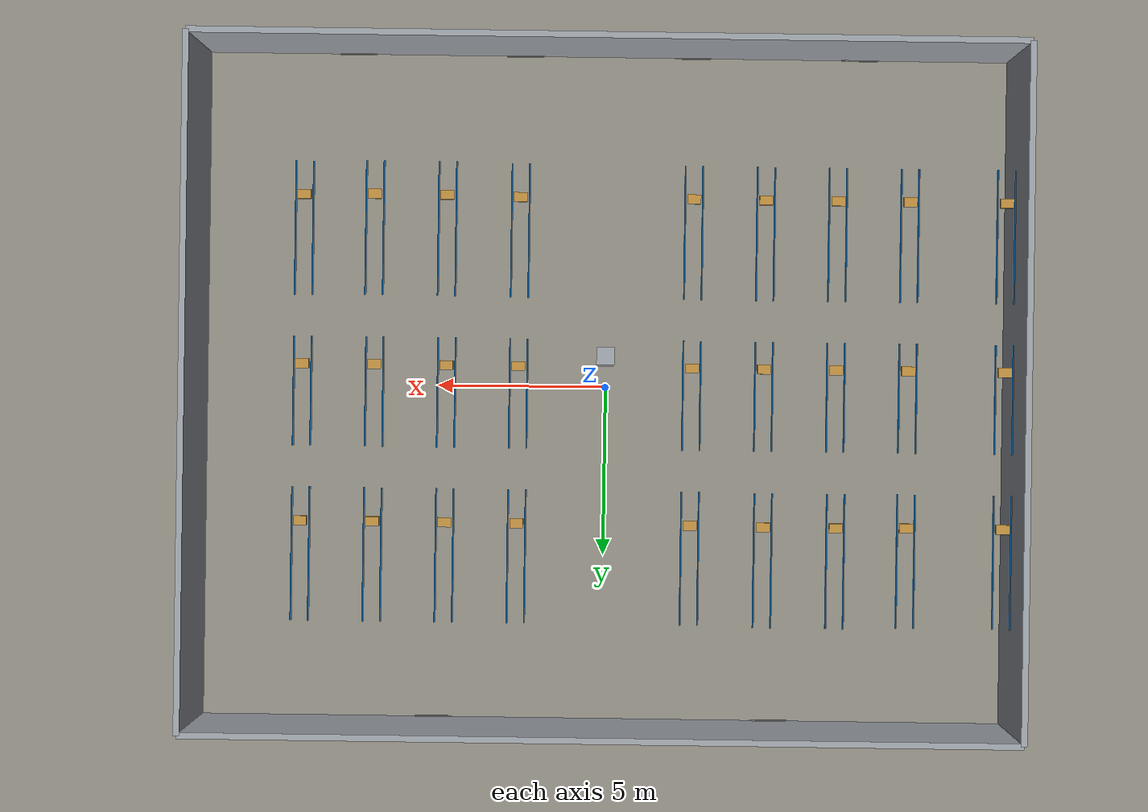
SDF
<sdf version="1.8">
 <world name="warehouse_full_4cam_commissioning">
  <model name="ground_plane">
   <static>true</static>
   <link name="link">
    <collision name="collision">
     <geometry><plane><normal>0 0 1</normal><size>24.5 20.5</size></plane></geometry>
    </collision>
    <visual name="visual">
     <geometry><plane><normal>0 0 1</normal><size>24.5 20.5</size></plane></geometry>
     <material>
      <ambient>0.56 0.55 0.51 1</ambient>
      <diffuse>0.56 0.55 0.51 1</diffuse>
      <specular>0.05 0.05 0.05 1</specular>
     </material>
    </visual>
   </link>
  </model>
  <model name="warehouse_walls">
   <static>true</static>
   <link name="wall_east">
    <pose>12.000 0.000 2.250 0 0 0</pose>
    <collision name="collision"><geometry><box><size>0.180 20.000 4.500</size></box></geometry></collision>
    <sensor name="contact" type="contact">
     <contact><collision>collision</collision></contact>
     <update_rate>60</update_rate>
    </sensor>
    <visual name="visual">
     <geometry><box><size>0.180 20.000 4.500</size></box></geometry>
     <material><ambient>0.62 0.64 0.67 1</ambient><diffuse>0.62 0.64 0.67 1</diffuse></material>
    </visual>
   </link>
   <link name="wall_west">
    <pose>-12.000 0.000 2.250 0 0 0</pose>
    <collision name="collision"><geometry><box><size>0.180 20.000 4.500</size></box></geometry></collision>
    <sensor name="contact" type="contact">
     <contact><collision>collision</collision></contact>
     <update_rate>60</update_rate>
    </sensor>
    <visual name="visual">
     <geometry><box><size>0.180 20.000 4.500</size></box></geometry>
     <material><ambient>0.62 0.64 0.67 1</ambient><diffuse>0.62 0.64 0.67 1</diffuse></material>
    </visual>
   </link>
   <link name="wall_north">
    <pose>0.000 10.000 2.250 0 0 0</pose>
    <collision name="collision"><geometry><box><size>24.000 0.180 4.500</size></box></geometry></collision>
    <sensor name="contact" type="contact">
     <contact><collision>collision</collision></contact>
     <update_rate>60</update_rate>
    </sensor>
    <visual name="visual">
     <geometry><box><size>24.000 0.180 4.500</size></box></geometry>
     <material><ambient>0.62 0.64 0.67 1</ambient><diffuse>0.62 0.64 0.67 1</diffuse></material>
    </visual>
   </link>
   <link name="wall_south">
    <pose>0.000 -10.000 2.250 0 0 0</pose>
    <collision name="collision"><geometry><box><size>24.000 0.180 4.500</size></box></geometry></collision>
    <sensor name="contact" type="contact">
     <contact><collision>collision</collision></contact>
     <update_rate>60</update_rate>
    </sensor>
    <visual name="visual">
     <geometry><box><size>24.000 0.180 4.500</size></box></geometry>
     <material><ambient>0.62 0.64 0.67 1</ambient><diffuse>0.62 0.64 0.67 1</diffuse></material>
    </visual>
   </link>
   <link name="south_dock_a">
    <pose>-7.500 -9.920 0.075 0 0 0</pose>
    <visual name="visual">
     <geometry><box><size>1.100 0.070 0.150</size></box></geometry>
     <material><ambient>0.50 0.50 0.50 1</ambient><diffuse>0.50 0.50 0.50 1</diffuse></material>
    </visual>
   </link>
   <link name="south_dock_b">
    <pose>-2.500 -9.920 0.075 0 0 0</pose>
    <visual name="visual">
     <geometry><box><size>1.100 0.070 0.150</size></box></geometry>
     <material><ambient>0.50 0.50 0.50 1</ambient><diffuse>0.50 0.50 0.50 1</diffuse></material>
    </visual>
   </link>
   <link name="south_dock_c">
    <pose>2.500 -9.920 0.075 0 0 0</pose>
    <visual name="visual">
     <geometry><box><size>1.100 0.070 0.150</size></box></geometry>
     <material><ambient>0.50 0.50 0.50 1</ambient><diffuse>0.50 0.50 0.50 1</diffuse></material>
    </visual>
   </link>
   <link name="south_dock_d">
    <pose>7.500 -9.920 0.075 0 0 0</pose>
    <visual name="visual">
     <geometry><box><size>1.100 0.070 0.150</size></box></geometry>
     <material><ambient>0.50 0.50 0.50 1</ambient><diffuse>0.50 0.50 0.50 1</diffuse></material>
    </visual>
   </link>
   <link name="north_dock_a">
    <pose>-5.000 9.920 0.075 0 0 0</pose>
    <visual name="visual">
     <geometry><box><size>1.100 0.070 0.150</size></box></geometry>
     <material><ambient>0.50 0.50 0.50 1</ambient><diffuse>0.50 0.50 0.50 1</diffuse></material>
    </visual>
   </link>
   <link name="north_dock_b">
    <pose>5.000 9.920 0.075 0 0 0</pose>
    <visual name="visual">
     <geometry><box><size>1.100 0.070 0.150</size></box></geometry>
     <material><ambient>0.50 0.50 0.50 1</ambient><diffuse>0.50 0.50 0.50 1</diffuse></material>
    </visual>
   </link>
  </model>
  <model name="warehouse_rack_occluders">
   <static>true</static>
   <link name="rack_W1_south">
    <pose>-8.825 -4.550 1.045 0 0 0</pose>
    <collision name="collision"><geometry><box><size>0.550 3.900 2.090</size></box></geometry></collision>
    <sensor name="contact" type="contact">
     <contact><collision>collision</collision></contact>
     <update_rate>60</update_rate>
    </sensor>
   </link>
   <link name="rail_W1_south_west">
    <pose>-9.080 -4.550 2.160 0 0 0</pose>
    <visual name="visual">
     <geometry><box><size>0.040 3.900 0.100</size></box></geometry>
     <material><ambient>0.00 0.28 0.50 1</ambient><diffuse>0.00 0.28 0.50 1</diffuse></material>
    </visual>
   </link>
   <link name="rail_W1_south_east">
    <pose>-8.570 -4.550 2.160 0 0 0</pose>
    <visual name="visual">
     <geometry><box><size>0.040 3.900 0.100</size></box></geometry>
     <material><ambient>0.00 0.28 0.50 1</ambient><diffuse>0.00 0.28 0.50 1</diffuse></material>
    </visual>
   </link>
   <link name="shelfbox_W1_south">
    <pose>-8.825 -5.525 2.290 0 0 0</pose>
    <visual name="visual">
     <geometry><box><size>0.390 0.270 0.160</size></box></geometry>
     <material><ambient>0.75 0.56 0.24 1</ambient><diffuse>0.75 0.56 0.24 1</diffuse></material>
    </visual>
   </link>
   <link name="rack_W1_mid">
    <pose>-8.825 0.200 1.045 0 0 0</pose>
    <collision name="collision"><geometry><box><size>0.550 3.200 2.090</size></box></geometry></collision>
    <sensor name="contact" type="contact">
     <contact><collision>collision</collision></contact>
     <update_rate>60</update_rate>
    </sensor>
   </link>
   <link name="rail_W1_mid_west">
    <pose>-9.080 0.200 2.160 0 0 0</pose>
    <visual name="visual">
     <geometry><box><size>0.040 3.200 0.100</size></box></geometry>
     <material><ambient>0.00 0.28 0.50 1</ambient><diffuse>0.00 0.28 0.50 1</diffuse></material>
    </visual>
   </link>
   <link name="rail_W1_mid_east">
    <pose>-8.570 0.200 2.160 0 0 0</pose>
    <visual name="visual">
     <geometry><box><size>0.040 3.200 0.100</size></box></geometry>
     <material><ambient>0.00 0.28 0.50 1</ambient><diffuse>0.00 0.28 0.50 1</diffuse></material>
    </visual>
   </link>
   <link name="shelfbox_W1_mid">
    <pose>-8.825 -0.600 2.290 0 0 0</pose>
    <visual name="visual">
     <geometry><box><size>0.390 0.270 0.160</size></box></geometry>
     <material><ambient>0.75 0.56 0.24 1</ambient><diffuse>0.75 0.56 0.24 1</diffuse></material>
    </visual>
   </link>
   <link name="rack_W1_north">
    <pose>-8.825 4.950 1.045 0 0 0</pose>
    <collision name="collision"><geometry><box><size>0.550 3.900 2.090</size></box></geometry></collision>
    <sensor name="contact" type="contact">
     <contact><collision>collision</collision></contact>
     <update_rate>60</update_rate>
    </sensor>
   </link>
   <link name="rail_W1_north_west">
    <pose>-9.080 4.950 2.160 0 0 0</pose>
    <visual name="visual">
     <geometry><box><size>0.040 3.900 0.100</size></box></geometry>
     <material><ambient>0.00 0.28 0.50 1</ambient><diffuse>0.00 0.28 0.50 1</diffuse></material>
    </visual>
   </link>
   <link name="rail_W1_north_east">
    <pose>-8.570 4.950 2.160 0 0 0</pose>
    <visual name="visual">
     <geometry><box><size>0.040 3.900 0.100</size></box></geometry>
     <material><ambient>0.00 0.28 0.50 1</ambient><diffuse>0.00 0.28 0.50 1</diffuse></material>
    </visual>
   </link>
   <link name="shelfbox_W1_north">
    <pose>-8.825 3.975 2.290 0 0 0</pose>
    <visual name="visual">
     <geometry><box><size>0.390 0.270 0.160</size></box></geometry>
     <material><ambient>0.75 0.56 0.24 1</ambient><diffuse>0.75 0.56 0.24 1</diffuse></material>
    </visual>
   </link>
   <link name="rack_W2_south">
    <pose>-6.725 -4.550 1.045 0 0 0</pose>
    <collision name="collision"><geometry><box><size>0.550 3.900 2.090</size></box></geometry></collision>
    <sensor name="contact" type="contact">
     <contact><collision>collision</collision></contact>
     <update_rate>60</update_rate>
    </sensor>
   </link>
   <link name="rail_W2_south_west">
    <pose>-6.980 -4.550 2.160 0 0 0</pose>
    <visual name="visual">
     <geometry><box><size>0.040 3.900 0.100</size></box></geometry>
     <material><ambient>0.00 0.28 0.50 1</ambient><diffuse>0.00 0.28 0.50 1</diffuse></material>
    </visual>
   </link>
   <link name="rail_W2_south_east">
    <pose>-6.470 -4.550 2.160 0 0 0</pose>
    <visual name="visual">
     <geometry><box><size>0.040 3.900 0.100</size></box></geometry>
     <material><ambient>0.00 0.28 0.50 1</ambient><diffuse>0.00 0.28 0.50 1</diffuse></material>
    </visual>
   </link>
   <link name="shelfbox_W2_south">
    <pose>-6.725 -5.525 2.290 0 0 0</pose>
    <visual name="visual">
     <geometry><box><size>0.390 0.270 0.160</size></box></geometry>
     <material><ambient>0.75 0.56 0.24 1</ambient><diffuse>0.75 0.56 0.24 1</diffuse></material>
    </visual>
   </link>
   <link name="rack_W2_mid">
    <pose>-6.725 0.200 1.045 0 0 0</pose>
    <collision name="collision"><geometry><box><size>0.550 3.200 2.090</size></box></geometry></collision>
    <sensor name="contact" type="contact">
     <contact><collision>collision</collision></contact>
     <update_rate>60</update_rate>
    </sensor>
   </link>
   <link name="rail_W2_mid_west">
    <pose>-6.980 0.200 2.160 0 0 0</pose>
    <visual name="visual">
     <geometry><box><size>0.040 3.200 0.100</size></box></geometry>
     <material><ambient>0.00 0.28 0.50 1</ambient><diffuse>0.00 0.28 0.50 1</diffuse></material>
    </visual>
   </link>
   <link name="rail_W2_mid_east">
    <pose>-6.470 0.200 2.160 0 0 0</pose>
    <visual name="visual">
     <geometry><box><size>0.040 3.200 0.100</size></box></geometry>
     <material><ambient>0.00 0.28 0.50 1</ambient><diffuse>0.00 0.28 0.50 1</diffuse></material>
    </visual>
   </link>
   <link name="shelfbox_W2_mid">
    <pose>-6.725 -0.600 2.290 0 0 0</pose>
    <visual name="visual">
     <geometry><box><size>0.390 0.270 0.160</size></box></geometry>
     <material><ambient>0.75 0.56 0.24 1</ambient><diffuse>0.75 0.56 0.24 1</diffuse></material>
    </visual>
   </link>
   <link name="rack_W2_north">
    <pose>-6.725 4.950 1.305 0 0 0</pose>
    <collision name="collision"><geometry><box><size>0.550 3.900 2.610</size></box></geometry></collision>
    <sensor name="contact" type="contact">
     <contact><collision>collision</collision></contact>
     <update_rate>60</update_rate>
    </sensor>
   </link>
   <link name="rail_W2_north_west">
    <pose>-6.980 4.950 2.680 0 0 0</pose>
    <visual name="visual">
     <geometry><box><size>0.040 3.900 0.100</size></box></geometry>
     <material><ambient>0.00 0.28 0.50 1</ambient><diffuse>0.00 0.28 0.50 1</diffuse></material>
    </visual>
   </link>
   <link name="rail_W2_north_east">
    <pose>-6.470 4.950 2.680 0 0 0</pose>
    <visual name="visual">
     <geometry><box><size>0.040 3.900 0.100</size></box></geometry>
     <material><ambient>0.00 0.28 0.50 1</ambient><diffuse>0.00 0.28 0.50 1</diffuse></material>
    </visual>
   </link>
   <link name="shelfbox_W2_north">
    <pose>-6.725 3.975 2.810 0 0 0</pose>
    <visual name="visual">
     <geometry><box><size>0.390 0.270 0.160</size></box></geometry>
     <material><ambient>0.75 0.56 0.24 1</ambient><diffuse>0.75 0.56 0.24 1</diffuse></material>
    </visual>
   </link>
   <link name="rack_W3_south">
    <pose>-4.625 -4.550 1.045 0 0 0</pose>
    <collision name="collision"><geometry><box><size>0.550 3.900 2.090</size></box></geometry></collision>
    <sensor name="contact" type="contact">
     <contact><collision>collision</collision></contact>
     <update_rate>60</update_rate>
    </sensor>
   </link>
   <link name="rail_W3_south_west">
    <pose>-4.880 -4.550 2.160 0 0 0</pose>
    <visual name="visual">
     <geometry><box><size>0.040 3.900 0.100</size></box></geometry>
     <material><ambient>0.00 0.28 0.50 1</ambient><diffuse>0.00 0.28 0.50 1</diffuse></material>
    </visual>
   </link>
   <link name="rail_W3_south_east">
    <pose>-4.370 -4.550 2.160 0 0 0</pose>
    <visual name="visual">
     <geometry><box><size>0.040 3.900 0.100</size></box></geometry>
     <material><ambient>0.00 0.28 0.50 1</ambient><diffuse>0.00 0.28 0.50 1</diffuse></material>
    </visual>
   </link>
   <link name="shelfbox_W3_south">
    <pose>-4.625 -5.525 2.290 0 0 0</pose>
    <visual name="visual">
     <geometry><box><size>0.390 0.270 0.160</size></box></geometry>
     <material><ambient>0.75 0.56 0.24 1</ambient><diffuse>0.75 0.56 0.24 1</diffuse></material>
    </visual>
   </link>
   <link name="rack_W3_mid">
    <pose>-4.625 0.200 1.045 0 0 0</pose>
    <collision name="collision"><geometry><box><size>0.550 3.200 2.090</size></box></geometry></collision>
    <sensor name="contact" type="contact">
     <contact><collision>collision</collision></contact>
     <update_rate>60</update_rate>
    </sensor>
   </link>
   <link name="rail_W3_mid_west">
    <pose>-4.880 0.200 2.160 0 0 0</pose>
    <visual name="visual">
     <geometry><box><size>0.040 3.200 0.100</size></box></geometry>
     <material><ambient>0.00 0.28 0.50 1</ambient><diffuse>0.00 0.28 0.50 1</diffuse></material>
    </visual>
   </link>
   <link name="rail_W3_mid_east">
    <pose>-4.370 0.200 2.160 0 0 0</pose>
    <visual name="visual">
     <geometry><box><size>0.040 3.200 0.100</size></box></geometry>
     <material><ambient>0.00 0.28 0.50 1</ambient><diffuse>0.00 0.28 0.50 1</diffuse></material>
    </visual>
   </link>
   <link name="shelfbox_W3_mid">
    <pose>-4.625 -0.600 2.290 0 0 0</pose>
    <visual name="visual">
     <geometry><box><size>0.390 0.270 0.160</size></box></geometry>
     <material><ambient>0.75 0.56 0.24 1</ambient><diffuse>0.75 0.56 0.24 1</diffuse></material>
    </visual>
   </link>
   <link name="rack_W3_north">
    <pose>-4.625 4.950 1.305 0 0 0</pose>
    <collision name="collision"><geometry><box><size>0.550 3.900 2.610</size></box></geometry></collision>
    <sensor name="contact" type="contact">
     <contact><collision>collision</collision></contact>
     <update_rate>60</update_rate>
    </sensor>
   </link>
   <link name="rail_W3_north_west">
    <pose>-4.880 4.950 2.680 0 0 0</pose>
    <visual name="visual">
     <geometry><box><size>0.040 3.900 0.100</size></box></geometry>
     <material><ambient>0.00 0.28 0.50 1</ambient><diffuse>0.00 0.28 0.50 1</diffuse></material>
    </visual>
   </link>
   <link name="rail_W3_north_east">
    <pose>-4.370 4.950 2.680 0 0 0</pose>
    <visual name="visual">
     <geometry><box><size>0.040 3.900 0.100</size></box></geometry>
     <material><ambient>0.00 0.28 0.50 1</ambient><diffuse>0.00 0.28 0.50 1</diffuse></material>
    </visual>
   </link>
   <link name="shelfbox_W3_north">
    <pose>-4.625 3.975 2.810 0 0 0</pose>
    <visual name="visual">
     <geometry><box><size>0.390 0.270 0.160</size></box></geometry>
     <material><ambient>0.75 0.56 0.24 1</ambient><diffuse>0.75 0.56 0.24 1</diffuse></material>
    </visual>
   </link>
   <link name="rack_W4_south">
    <pose>-2.525 -4.550 1.045 0 0 0</pose>
    <collision name="collision"><geometry><box><size>0.550 3.900 2.090</size></box></geometry></collision>
    <sensor name="contact" type="contact">
     <contact><collision>collision</collision></contact>
     <update_rate>60</update_rate>
    </sensor>
   </link>
   <link name="rail_W4_south_west">
    <pose>-2.780 -4.550 2.160 0 0 0</pose>
    <visual name="visual">
     <geometry><box><size>0.040 3.900 0.100</size></box></geometry>
     <material><ambient>0.00 0.28 0.50 1</ambient><diffuse>0.00 0.28 0.50 1</diffuse></material>
    </visual>
   </link>
   <link name="rail_W4_south_east">
    <pose>-2.270 -4.550 2.160 0 0 0</pose>
    <visual name="visual">
     <geometry><box><size>0.040 3.900 0.100</size></box></geometry>
     <material><ambient>0.00 0.28 0.50 1</ambient><diffuse>0.00 0.28 0.50 1</diffuse></material>
    </visual>
   </link>
   <link name="shelfbox_W4_south">
    <pose>-2.525 -5.525 2.290 0 0 0</pose>
    <visual name="visual">
     <geometry><box><size>0.390 0.270 0.160</size></box></geometry>
     <material><ambient>0.75 0.56 0.24 1</ambient><diffuse>0.75 0.56 0.24 1</diffuse></material>
    </visual>
   </link>
   <link name="rack_W4_mid">
    <pose>-2.525 0.200 1.045 0 0 0</pose>
    <collision name="collision"><geometry><box><size>0.550 3.200 2.090</size></box></geometry></collision>
    <sensor name="contact" type="contact">
     <contact><collision>collision</collision></contact>
     <update_rate>60</update_rate>
    </sensor>
   </link>
   <link name="rail_W4_mid_west">
    <pose>-2.780 0.200 2.160 0 0 0</pose>
    <visual name="visual">
     <geometry><box><size>0.040 3.200 0.100</size></box></geometry>
     <material><ambient>0.00 0.28 0.50 1</ambient><diffuse>0.00 0.28 0.50 1</diffuse></material>
    </visual>
   </link>
   <link name="rail_W4_mid_east">
    <pose>-2.270 0.200 2.160 0 0 0</pose>
    <visual name="visual">
     <geometry><box><size>0.040 3.200 0.100</size></box></geometry>
     <material><ambient>0.00 0.28 0.50 1</ambient><diffuse>0.00 0.28 0.50 1</diffuse></material>
    </visual>
   </link>
   <link name="shelfbox_W4_mid">
    <pose>-2.525 -0.600 2.290 0 0 0</pose>
    <visual name="visual">
     <geometry><box><size>0.390 0.270 0.160</size></box></geometry>
     <material><ambient>0.75 0.56 0.24 1</ambient><diffuse>0.75 0.56 0.24 1</diffuse></material>
    </visual>
   </link>
   <link name="rack_W4_north">
    <pose>-2.525 4.950 1.045 0 0 0</pose>
    <collision name="collision"><geometry><box><size>0.550 3.900 2.090</size></box></geometry></collision>
    <sensor name="contact" type="contact">
     <contact><collision>collision</collision></contact>
     <update_rate>60</update_rate>
    </sensor>
   </link>
   <link name="rail_W4_north_west">
    <pose>-2.780 4.950 2.160 0 0 0</pose>
    <visual name="visual">
     <geometry><box><size>0.040 3.900 0.100</size></box></geometry>
     <material><ambient>0.00 0.28 0.50 1</ambient><diffuse>0.00 0.28 0.50 1</diffuse></material>
    </visual>
   </link>
   <link name="rail_W4_north_east">
    <pose>-2.270 4.950 2.160 0 0 0</pose>
    <visual name="visual">
     <geometry><box><size>0.040 3.900 0.100</size></box></geometry>
     <material><ambient>0.00 0.28 0.50 1</ambient><diffuse>0.00 0.28 0.50 1</diffuse></material>
    </visual>
   </link>
   <link name="shelfbox_W4_north">
    <pose>-2.525 3.975 2.290 0 0 0</pose>
    <visual name="visual">
     <geometry><box><size>0.390 0.270 0.160</size></box></geometry>
     <material><ambient>0.75 0.56 0.24 1</ambient><diffuse>0.75 0.56 0.24 1</diffuse></material>
    </visual>
   </link>
   <link name="rack_E1_south">
    <pose>2.525 -4.550 1.045 0 0 0</pose>
    <collision name="collision"><geometry><box><size>0.550 3.900 2.090</size></box></geometry></collision>
    <sensor name="contact" type="contact">
     <contact><collision>collision</collision></contact>
     <update_rate>60</update_rate>
    </sensor>
   </link>
   <link name="rail_E1_south_west">
    <pose>2.270 -4.550 2.160 0 0 0</pose>
    <visual name="visual">
     <geometry><box><size>0.040 3.900 0.100</size></box></geometry>
     <material><ambient>0.00 0.28 0.50 1</ambient><diffuse>0.00 0.28 0.50 1</diffuse></material>
    </visual>
   </link>
   <link name="rail_E1_south_east">
    <pose>2.780 -4.550 2.160 0 0 0</pose>
    <visual name="visual">
     <geometry><box><size>0.040 3.900 0.100</size></box></geometry>
     <material><ambient>0.00 0.28 0.50 1</ambient><diffuse>0.00 0.28 0.50 1</diffuse></material>
    </visual>
   </link>
   <link name="shelfbox_E1_south">
    <pose>2.525 -5.525 2.290 0 0 0</pose>
    <visual name="visual">
     <geometry><box><size>0.390 0.270 0.160</size></box></geometry>
     <material><ambient>0.75 0.56 0.24 1</ambient><diffuse>0.75 0.56 0.24 1</diffuse></material>
    </visual>
   </link>
   <link name="rack_E1_mid">
    <pose>2.525 0.200 1.045 0 0 0</pose>
    <collision name="collision"><geometry><box><size>0.550 3.200 2.090</size></box></geometry></collision>
    <sensor name="contact" type="contact">
     <contact><collision>collision</collision></contact>
     <update_rate>60</update_rate>
    </sensor>
   </link>
   <link name="rail_E1_mid_west">
    <pose>2.270 0.200 2.160 0 0 0</pose>
    <visual name="visual">
     <geometry><box><size>0.040 3.200 0.100</size></box></geometry>
     <material><ambient>0.00 0.28 0.50 1</ambient><diffuse>0.00 0.28 0.50 1</diffuse></material>
    </visual>
   </link>
   <link name="rail_E1_mid_east">
    <pose>2.780 0.200 2.160 0 0 0</pose>
    <visual name="visual">
     <geometry><box><size>0.040 3.200 0.100</size></box></geometry>
     <material><ambient>0.00 0.28 0.50 1</ambient><diffuse>0.00 0.28 0.50 1</diffuse></material>
    </visual>
   </link>
   <link name="shelfbox_E1_mid">
    <pose>2.525 -0.600 2.290 0 0 0</pose>
    <visual name="visual">
     <geometry><box><size>0.390 0.270 0.160</size></box></geometry>
     <material><ambient>0.75 0.56 0.24 1</ambient><diffuse>0.75 0.56 0.24 1</diffuse></material>
    </visual>
   </link>
   <link name="rack_E1_north">
    <pose>2.525 4.950 1.045 0 0 0</pose>
    <collision name="collision"><geometry><box><size>0.550 3.900 2.090</size></box></geometry></collision>
    <sensor name="contact" type="contact">
     <contact><collision>collision</collision></contact>
     <update_rate>60</update_rate>
    </sensor>
   </link>
   <link name="rail_E1_north_west">
    <pose>2.270 4.950 2.160 0 0 0</pose>
    <visual name="visual">
     <geometry><box><size>0.040 3.900 0.100</size></box></geometry>
     <material><ambient>0.00 0.28 0.50 1</ambient><diffuse>0.00 0.28 0.50 1</diffuse></material>
    </visual>
   </link>
   <link name="rail_E1_north_east">
    <pose>2.780 4.950 2.160 0 0 0</pose>
    <visual name="visual">
     <geometry><box><size>0.040 3.900 0.100</size></box></geometry>
     <material><ambient>0.00 0.28 0.50 1</ambient><diffuse>0.00 0.28 0.50 1</diffuse></material>
    </visual>
   </link>
   <link name="shelfbox_E1_north">
    <pose>2.525 3.975 2.290 0 0 0</pose>
    <visual name="visual">
     <geometry><box><size>0.390 0.270 0.160</size></box></geometry>
     <material><ambient>0.75 0.56 0.24 1</ambient><diffuse>0.75 0.56 0.24 1</diffuse></material>
    </visual>
   </link>
   <link name="rack_E2_south">
    <pose>4.625 -4.550 1.305 0 0 0</pose>
    <collision name="collision"><geometry><box><size>0.550 3.900 2.610</size></box></geometry></collision>
    <sensor name="contact" type="contact">
     <contact><collision>collision</collision></contact>
     <update_rate>60</update_rate>
    </sensor>
   </link>
   <link name="rail_E2_south_west">
    <pose>4.370 -4.550 2.680 0 0 0</pose>
    <visual name="visual">
     <geometry><box><size>0.040 3.900 0.100</size></box></geometry>
     <material><ambient>0.00 0.28 0.50 1</ambient><diffuse>0.00 0.28 0.50 1</diffuse></material>
    </visual>
   </link>
   <link name="rail_E2_south_east">
    <pose>4.880 -4.550 2.680 0 0 0</pose>
    <visual name="visual">
     <geometry><box><size>0.040 3.900 0.100</size></box></geometry>
     <material><ambient>0.00 0.28 0.50 1</ambient><diffuse>0.00 0.28 0.50 1</diffuse></material>
    </visual>
   </link>
   <link name="shelfbox_E2_south">
    <pose>4.625 -5.525 2.810 0 0 0</pose>
    <visual name="visual">
     <geometry><box><size>0.390 0.270 0.160</size></box></geometry>
     <material><ambient>0.75 0.56 0.24 1</ambient><diffuse>0.75 0.56 0.24 1</diffuse></material>
    </visual>
   </link>
   <link name="rack_E2_mid">
    <pose>4.625 0.200 1.045 0 0 0</pose>
    <collision name="collision"><geometry><box><size>0.550 3.200 2.090</size></box></geometry></collision>
    <sensor name="contact" type="contact">
     <contact><collision>collision</collision></contact>
     <update_rate>60</update_rate>
    </sensor>
   </link>
   <link name="rail_E2_mid_west">
    <pose>4.370 0.200 2.160 0 0 0</pose>
    <visual name="visual">
     <geometry><box><size>0.040 3.200 0.100</size></box></geometry>
     <material><ambient>0.00 0.28 0.50 1</ambient><diffuse>0.00 0.28 0.50 1</diffuse></material>
    </visual>
   </link>
   <link name="rail_E2_mid_east">
    <pose>4.880 0.200 2.160 0 0 0</pose>
    <visual name="visual">
     <geometry><box><size>0.040 3.200 0.100</size></box></geometry>
     <material><ambient>0.00 0.28 0.50 1</ambient><diffuse>0.00 0.28 0.50 1</diffuse></material>
    </visual>
   </link>
   <link name="shelfbox_E2_mid">
    <pose>4.625 -0.600 2.290 0 0 0</pose>
    <visual name="visual">
     <geometry><box><size>0.390 0.270 0.160</size></box></geometry>
     <material><ambient>0.75 0.56 0.24 1</ambient><diffuse>0.75 0.56 0.24 1</diffuse></material>
    </visual>
   </link>
   <link name="rack_E2_north">
    <pose>4.625 4.950 1.045 0 0 0</pose>
    <collision name="collision"><geometry><box><size>0.550 3.900 2.090</size></box></geometry></collision>
    <sensor name="contact" type="contact">
     <contact><collision>collision</collision></contact>
     <update_rate>60</update_rate>
    </sensor>
   </link>
   <link name="rail_E2_north_west">
    <pose>4.370 4.950 2.160 0 0 0</pose>
    <visual name="visual">
     <geometry><box><size>0.040 3.900 0.100</size></box></geometry>
     <material><ambient>0.00 0.28 0.50 1</ambient><diffuse>0.00 0.28 0.50 1</diffuse></material>
    </visual>
   </link>
   <link name="rail_E2_north_east">
    <pose>4.880 4.950 2.160 0 0 0</pose>
    <visual name="visual">
     <geometry><box><size>0.040 3.900 0.100</size></box></geometry>
     <material><ambient>0.00 0.28 0.50 1</ambient><diffuse>0.00 0.28 0.50 1</diffuse></material>
    </visual>
   </link>
   <link name="shelfbox_E2_north">
    <pose>4.625 3.975 2.290 0 0 0</pose>
    <visual name="visual">
     <geometry><box><size>0.390 0.270 0.160</size></box></geometry>
     <material><ambient>0.75 0.56 0.24 1</ambient><diffuse>0.75 0.56 0.24 1</diffuse></material>
    </visual>
   </link>
   <link name="rack_E3_south">
    <pose>6.725 -4.550 1.305 0 0 0</pose>
    <collision name="collision"><geometry><box><size>0.550 3.900 2.610</size></box></geometry></collision>
    <sensor name="contact" type="contact">
     <contact><collision>collision</collision></contact>
     <update_rate>60</update_rate>
    </sensor>
   </link>
   <link name="rail_E3_south_west">
    <pose>6.470 -4.550 2.680 0 0 0</pose>
    <visual name="visual">
     <geometry><box><size>0.040 3.900 0.100</size></box></geometry>
     <material><ambient>0.00 0.28 0.50 1</ambient><diffuse>0.00 0.28 0.50 1</diffuse></material>
    </visual>
   </link>
   <link name="rail_E3_south_east">
    <pose>6.980 -4.550 2.680 0 0 0</pose>
    <visual name="visual">
     <geometry><box><size>0.040 3.900 0.100</size></box></geometry>
     <material><ambient>0.00 0.28 0.50 1</ambient><diffuse>0.00 0.28 0.50 1</diffuse></material>
    </visual>
   </link>
   <link name="shelfbox_E3_south">
    <pose>6.725 -5.525 2.810 0 0 0</pose>
    <visual name="visual">
     <geometry><box><size>0.390 0.270 0.160</size></box></geometry>
     <material><ambient>0.75 0.56 0.24 1</ambient><diffuse>0.75 0.56 0.24 1</diffuse></material>
    </visual>
   </link>
   <link name="rack_E3_mid">
    <pose>6.725 0.200 1.045 0 0 0</pose>
    <collision name="collision"><geometry><box><size>0.550 3.200 2.090</size></box></geometry></collision>
    <sensor name="contact" type="contact">
     <contact><collision>collision</collision></contact>
     <update_rate>60</update_rate>
    </sensor>
   </link>
   <link name="rail_E3_mid_west">
    <pose>6.470 0.200 2.160 0 0 0</pose>
    <visual name="visual">
     <geometry><box><size>0.040 3.200 0.100</size></box></geometry>
     <material><ambient>0.00 0.28 0.50 1</ambient><diffuse>0.00 0.28 0.50 1</diffuse></material>
    </visual>
   </link>
   <link name="rail_E3_mid_east">
    <pose>6.980 0.200 2.160 0 0 0</pose>
    <visual name="visual">
     <geometry><box><size>0.040 3.200 0.100</size></box></geometry>
     <material><ambient>0.00 0.28 0.50 1</ambient><diffuse>0.00 0.28 0.50 1</diffuse></material>
    </visual>
   </link>
   <link name="shelfbox_E3_mid">
    <pose>6.725 -0.600 2.290 0 0 0</pose>
    <visual name="visual">
     <geometry><box><size>0.390 0.270 0.160</size></box></geometry>
     <material><ambient>0.75 0.56 0.24 1</ambient><diffuse>0.75 0.56 0.24 1</diffuse></material>
    </visual>
   </link>
   <link name="rack_E3_north">
    <pose>6.725 4.950 1.045 0 0 0</pose>
    <collision name="collision"><geometry><box><size>0.550 3.900 2.090</size></box></geometry></collision>
    <sensor name="contact" type="contact">
     <contact><collision>collision</collision></contact>
     <update_rate>60</update_rate>
    </sensor>
   </link>
   <link name="rail_E3_north_west">
    <pose>6.470 4.950 2.160 0 0 0</pose>
    <visual name="visual">
     <geometry><box><size>0.040 3.900 0.100</size></box></geometry>
     <material><ambient>0.00 0.28 0.50 1</ambient><diffuse>0.00 0.28 0.50 1</diffuse></material>
    </visual>
   </link>
   <link name="rail_E3_north_east">
    <pose>6.980 4.950 2.160 0 0 0</pose>
    <visual name="visual">
     <geometry><box><size>0.040 3.900 0.100</size></box></geometry>
     <material><ambient>0.00 0.28 0.50 1</ambient><diffuse>0.00 0.28 0.50 1</diffuse></material>
    </visual>
   </link>
   <link name="shelfbox_E3_north">
    <pose>6.725 3.975 2.290 0 0 0</pose>
    <visual name="visual">
     <geometry><box><size>0.390 0.270 0.160</size></box></geometry>
     <material><ambient>0.75 0.56 0.24 1</ambient><diffuse>0.75 0.56 0.24 1</diffuse></material>
    </visual>
   </link>
   <link name="rack_E4_south">
    <pose>8.825 -4.550 1.045 0 0 0</pose>
    <collision name="collision"><geometry><box><size>0.550 3.900 2.090</size></box></geometry></collision>
    <sensor name="contact" type="contact">
     <contact><collision>collision</collision></contact>
     <update_rate>60</update_rate>
    </sensor>
   </link>
   <link name="rail_E4_south_west">
    <pose>8.570 -4.550 2.160 0 0 0</pose>
    <visual name="visual">
     <geometry><box><size>0.040 3.900 0.100</size></box></geometry>
     <material><ambient>0.00 0.28 0.50 1</ambient><diffuse>0.00 0.28 0.50 1</diffuse></material>
    </visual>
   </link>
   <link name="rail_E4_south_east">
    <pose>9.080 -4.550 2.160 0 0 0</pose>
    <visual name="visual">
     <geometry><box><size>0.040 3.900 0.100</size></box></geometry>
     <material><ambient>0.00 0.28 0.50 1</ambient><diffuse>0.00 0.28 0.50 1</diffuse></material>
    </visual>
   </link>
   <link name="shelfbox_E4_south">
    <pose>8.825 -5.525 2.290 0 0 0</pose>
    <visual name="visual">
     <geometry><box><size>0.390 0.270 0.160</size></box></geometry>
     <material><ambient>0.75 0.56 0.24 1</ambient><diffuse>0.75 0.56 0.24 1</diffuse></material>
    </visual>
   </link>
   <link name="rack_E4_mid">
    <pose>8.825 0.200 1.045 0 0 0</pose>
    <collision name="collision"><geometry><box><size>0.550 3.200 2.090</size></box></geometry></collision>
    <sensor name="contact" type="contact">
     <contact><collision>collision</collision></contact>
     <update_rate>60</update_rate>
    </sensor>
   </link>
   <link name="rail_E4_mid_west">
    <pose>8.570 0.200 2.160 0 0 0</pose>
    <visual name="visual">
     <geometry><box><size>0.040 3.200 0.100</size></box></geometry>
     <material><ambient>0.00 0.28 0.50 1</ambient><diffuse>0.00 0.28 0.50 1</diffuse></material>
    </visual>
   </link>
   <link name="rail_E4_mid_east">
    <pose>9.080 0.200 2.160 0 0 0</pose>
    <visual name="visual">
     <geometry><box><size>0.040 3.200 0.100</size></box></geometry>
     <material><ambient>0.00 0.28 0.50 1</ambient><diffuse>0.00 0.28 0.50 1</diffuse></material>
    </visual>
   </link>
   <link name="shelfbox_E4_mid">
    <pose>8.825 -0.600 2.290 0 0 0</pose>
    <visual name="visual">
     <geometry><box><size>0.390 0.270 0.160</size></box></geometry>
     <material><ambient>0.75 0.56 0.24 1</ambient><diffuse>0.75 0.56 0.24 1</diffuse></material>
    </visual>
   </link>
   <link name="rack_E4_north">
    <pose>8.825 4.950 1.045 0 0 0</pose>
    <collision name="collision"><geometry><box><size>0.550 3.900 2.090</size></box></geometry></collision>
    <sensor name="contact" type="contact">
     <contact><collision>collision</collision></contact>
     <update_rate>60</update_rate>
    </sensor>
   </link>
   <link name="rail_E4_north_west">
    <pose>8.570 4.950 2.160 0 0 0</pose>
    <visual name="visual">
     <geometry><box><size>0.040 3.900 0.100</size></box></geometry>
     <material><ambient>0.00 0.28 0.50 1</ambient><diffuse>0.00 0.28 0.50 1</diffuse></material>
    </visual>
   </link>
   <link name="rail_E4_north_east">
    <pose>9.080 4.950 2.160 0 0 0</pose>
    <visual name="visual">
     <geometry><box><size>0.040 3.900 0.100</size></box></geometry>
     <material><ambient>0.00 0.28 0.50 1</ambient><diffuse>0.00 0.28 0.50 1</diffuse></material>
    </visual>
   </link>
   <link name="shelfbox_E4_north">
    <pose>8.825 3.975 2.290 0 0 0</pose>
    <visual name="visual">
     <geometry><box><size>0.390 0.270 0.160</size></box></geometry>
     <material><ambient>0.75 0.56 0.24 1</ambient><diffuse>0.75 0.56 0.24 1</diffuse></material>
    </visual>
   </link>
   <link name="rack_W0_south">
    <pose>-11.635 -4.550 1.045 0 0 0</pose>
    <collision name="collision"><geometry><box><size>0.550 3.900 2.090</size></box></geometry></collision>
    <sensor name="contact" type="contact">
     <contact><collision>collision</collision></contact>
     <update_rate>60</update_rate>
    </sensor>
   </link>
   <link name="rail_W0_south_west">
    <pose>-11.890 -4.550 2.160 0 0 0</pose>
    <visual name="visual">
     <geometry><box><size>0.040 3.900 0.100</size></box></geometry>
     <material><ambient>0.00 0.28 0.50 1</ambient><diffuse>0.00 0.28 0.50 1</diffuse></material>
    </visual>
   </link>
   <link name="rail_W0_south_east">
    <pose>-11.380 -4.550 2.160 0 0 0</pose>
    <visual name="visual">
     <geometry><box><size>0.040 3.900 0.100</size></box></geometry>
     <material><ambient>0.00 0.28 0.50 1</ambient><diffuse>0.00 0.28 0.50 1</diffuse></material>
    </visual>
   </link>
   <link name="shelfbox_W0_south">
    <pose>-11.635 -5.525 2.290 0 0 0</pose>
    <visual name="visual">
     <geometry><box><size>0.390 0.270 0.160</size></box></geometry>
     <material><ambient>0.75 0.56 0.24 1</ambient><diffuse>0.75 0.56 0.24 1</diffuse></material>
    </visual>
   </link>
   <link name="rack_W0_mid">
    <pose>-11.635 0.200 1.045 0 0 0</pose>
    <collision name="collision"><geometry><box><size>0.550 3.200 2.090</size></box></geometry></collision>
    <sensor name="contact" type="contact">
     <contact><collision>collision</collision></contact>
     <update_rate>60</update_rate>
    </sensor>
   </link>
   <link name="rail_W0_mid_west">
    <pose>-11.890 0.200 2.160 0 0 0</pose>
    <visual name="visual">
     <geometry><box><size>0.040 3.200 0.100</size></box></geometry>
     <material><ambient>0.00 0.28 0.50 1</ambient><diffuse>0.00 0.28 0.50 1</diffuse></material>
    </visual>
   </link>
   <link name="rail_W0_mid_east">
    <pose>-11.380 0.200 2.160 0 0 0</pose>
    <visual name="visual">
     <geometry><box><size>0.040 3.200 0.100</size></box></geometry>
     <material><ambient>0.00 0.28 0.50 1</ambient><diffuse>0.00 0.28 0.50 1</diffuse></material>
    </visual>
   </link>
   <link name="shelfbox_W0_mid">
    <pose>-11.635 -0.600 2.290 0 0 0</pose>
    <visual name="visual">
     <geometry><box><size>0.390 0.270 0.160</size></box></geometry>
     <material><ambient>0.75 0.56 0.24 1</ambient><diffuse>0.75 0.56 0.24 1</diffuse></material>
    </visual>
   </link>
   <link name="rack_W0_north">
    <pose>-11.635 4.950 1.045 0 0 0</pose>
    <collision name="collision"><geometry><box><size>0.550 3.900 2.090</size></box></geometry></collision>
    <sensor name="contact" type="contact">
     <contact><collision>collision</collision></contact>
     <update_rate>60</update_rate>
    </sensor>
   </link>
   <link name="rail_W0_north_west">
    <pose>-11.890 4.950 2.160 0 0 0</pose>
    <visual name="visual">
     <geometry><box><size>0.040 3.900 0.100</size></box></geometry>
     <material><ambient>0.00 0.28 0.50 1</ambient><diffuse>0.00 0.28 0.50 1</diffuse></material>
    </visual>
   </link>
   <link name="rail_W0_north_east">
    <pose>-11.380 4.950 2.160 0 0 0</pose>
    <visual name="visual">
     <geometry><box><size>0.040 3.900 0.100</size></box></geometry>
     <material><ambient>0.00 0.28 0.50 1</ambient><diffuse>0.00 0.28 0.50 1</diffuse></material>
    </visual>
   </link>
   <link name="shelfbox_W0_north">
    <pose>-11.635 3.975 2.290 0 0 0</pose>
    <visual name="visual">
     <geometry><box><size>0.390 0.270 0.160</size></box></geometry>
     <material><ambient>0.75 0.56 0.24 1</ambient><diffuse>0.75 0.56 0.24 1</diffuse></material>
    </visual>
   </link>
   <link name="support_pillar">
    <pose>0.000 -0.900 2.600 0 0 0</pose>
    <collision name="collision"><geometry><box><size>0.500 0.500 5.200</size></box></geometry></collision>
    <sensor name="contact" type="contact">
     <contact><collision>collision</collision></contact>
     <update_rate>60</update_rate>
    </sensor>
    <visual name="visual">
     <geometry><box><size>0.500 0.500 5.200</size></box></geometry>
     <material><ambient>0.62 0.64 0.67 1</ambient><diffuse>0.62 0.64 0.67 1</diffuse></material>
    </visual>
   </link>
  </model>
  <include>
   <name>external_camera</name>
   <uri>model://external_camera</uri>
   <pose>-6.00 -10.00 6.10 0 0.92 1.5708</pose>
  </include>
  <include>
   <name>external_camera_c</name>
   <uri>model://external_camera_c</uri>
   <pose>6.00 -10.00 6.10 0 0.92 1.5708</pose>
  </include>
 </world>
</sdf>
